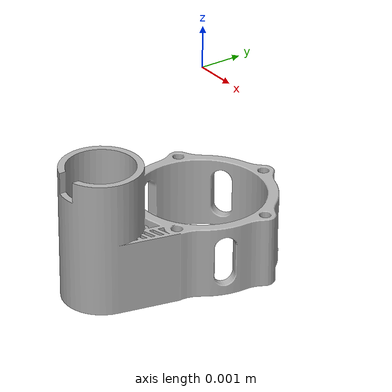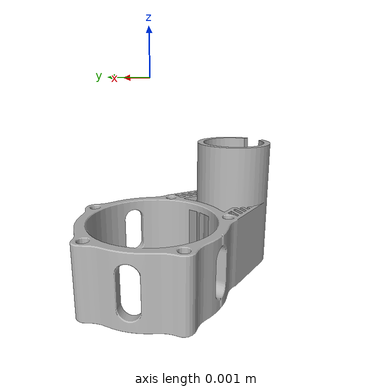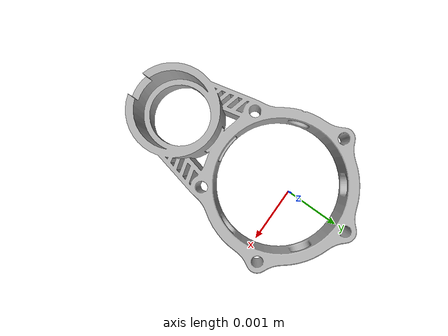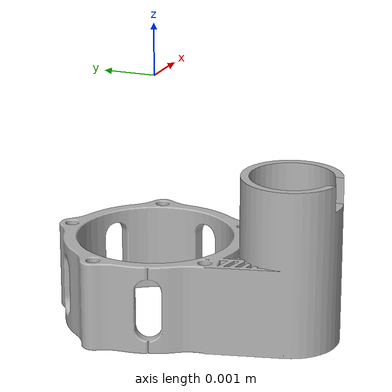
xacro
<?xml version="1.0" ?>
<robot name="BracketWOdometerHolder" xmlns:xacro="http://www.ros.org/wiki/xacro">

<xacro:include filename="$(find BracketWOdometerHolder_description)/urdf/materials.xacro" />
<xacro:include filename="$(find BracketWOdometerHolder_description)/urdf/BracketWOdometerHolder.trans" />
<xacro:include filename="$(find BracketWOdometerHolder_description)/urdf/BracketWOdometerHolder.gazebo" />
<link name="base_link">
  <inertial>
    <origin rpy="0 0 0" xyz="3.3998149126458943e-06 -0.029317218907991206 -0.09441486968599225"/>
    <mass value="0.9799871442497984"/>
    <inertia ixx="0.002026" ixy="-0.0" ixz="0.0" iyy="0.001015" iyz="0.000258" izz="0.002299"/>
  </inertial>
  <visual>
    <origin rpy="0 0 0" xyz="0 0 0"/>
    <geometry>
      <mesh filename="package://BracketWOdometerHolder_description/meshes/base_link.stl" scale="0.001 0.001 0.001"/>
    </geometry>
    <material name="silver"/>
  </visual>
  <collision>
    <origin rpy="0 0 0" xyz="0 0 0"/>
    <geometry>
      <mesh filename="package://BracketWOdometerHolder_description/meshes/base_link.stl" scale="0.001 0.001 0.001"/>
    </geometry>
  </collision>
</link>

</robot>

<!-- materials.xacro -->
<robot name="BracketWOdometerHolder" xmlns:xacro="http://www.ros.org/wiki/xacro" >

<material name="silver">
  <color rgba="0.700 0.700 0.700 1.000"/>
</material>

</robot>

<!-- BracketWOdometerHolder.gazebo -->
<robot name="BracketWOdometerHolder" xmlns:xacro="http://www.ros.org/wiki/xacro" >

<xacro:property name="body_color" value="Gazebo/Silver" />

<gazebo>
  <plugin filename="libgazebo_ros_control.so" name="control"/>
</gazebo>
<gazebo reference="base_link">
  <material>${body_color}</material>
  <mu1>0.2</mu1>
  <mu2>0.2</mu2>
  <selfCollide>true</selfCollide>
  <gravity>true</gravity>
</gazebo>

</robot>
